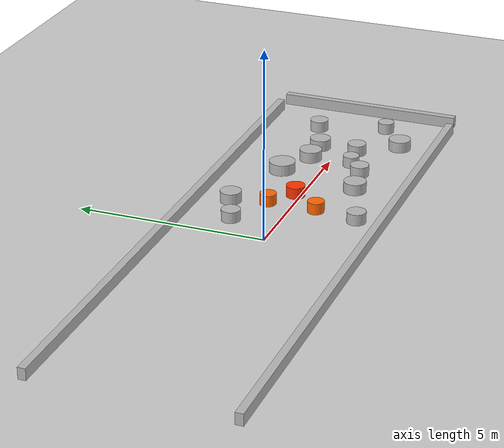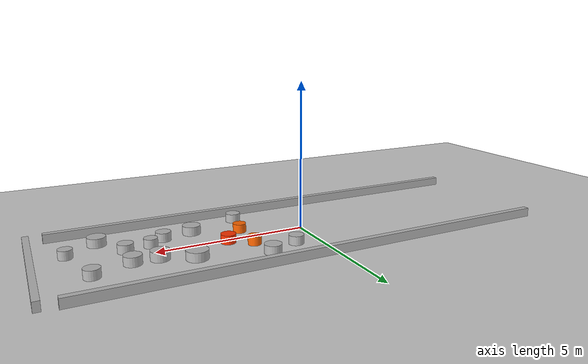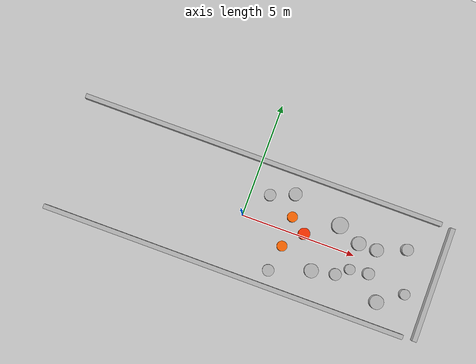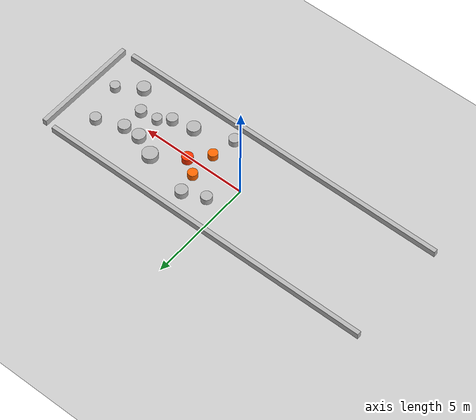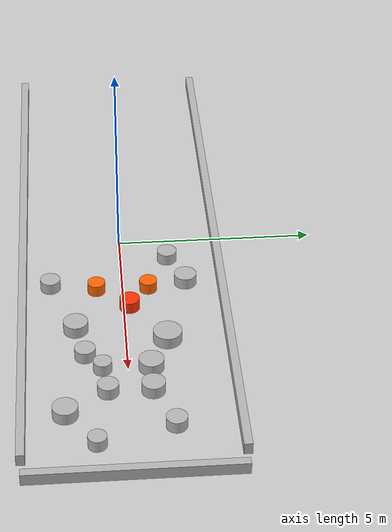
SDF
<?xml version="1.0"?>
<sdf version="1.6">
  <world name="default">
    <include><uri>model://ground_plane</uri></include>
    <include><uri>model://sun</uri></include>
    <scene><shadows>false</shadows></scene>
    <physics type="ode">
      <real_time_update_rate>100.0</real_time_update_rate>
      <max_step_size>0.01</max_step_size>
      <real_time_factor>1</real_time_factor>
      <ode><solver><type>quick</type><iters>150</iters><precon_iters>0</precon_iters><sor>1.4</sor><use_dynamic_moi_rescaling>1</use_dynamic_moi_rescaling></solver>
      <constraints><cfm>0.00001</cfm><erp>0.2</erp><contact_max_correcting_vel>2000.0</contact_max_correcting_vel><contact_surface_layer>0.01</contact_surface_layer></constraints></ode>
    </physics>

    <!-- Walls -->
    <model name="wall_l"><static>1</static><pose>0 2.5 0.15 0 0 0</pose><link name="l"><collision name="c"><geometry><box><size>16 0.2 0.3</size></box></geometry></collision><visual name="v"><geometry><box><size>16 0.2 0.3</size></box></geometry></visual></link></model>
    <model name="wall_r"><static>1</static><pose>0 -2.5 0.15 0 0 0</pose><link name="l"><collision name="c"><geometry><box><size>16 0.2 0.3</size></box></geometry></collision><visual name="v"><geometry><box><size>16 0.2 0.3</size></box></geometry></visual></link></model>
    <model name="end_wall"><static>1</static><pose>8.5 0 0.15 0 0 0</pose><link name="l"><collision name="c"><geometry><box><size>0.2 5 0.3</size></box></geometry></collision><visual name="v"><geometry><box><size>0.2 5 0.3</size></box></geometry></visual></link></model>

    <!-- Gate pillars -->
    <model name="gate_L"><static>1</static><pose>2.0 0.65 0.15 0 0 0</pose><link name="l"><collision name="c"><geometry><cylinder><radius>0.22</radius><length>0.3</length></cylinder></geometry></collision><visual name="v"><geometry><cylinder><radius>0.22</radius><length>0.3</length></cylinder></geometry><material><ambient>1 0.4 0.0 1</ambient></material></visual></link></model>
    <model name="gate_R"><static>1</static><pose>2.0 -0.65 0.15 0 0 0</pose><link name="l"><collision name="c"><geometry><cylinder><radius>0.22</radius><length>0.3</length></cylinder></geometry></collision><visual name="v"><geometry><cylinder><radius>0.22</radius><length>0.3</length></cylinder></geometry><material><ambient>1 0.4 0.0 1</ambient></material></visual></link></model>

    <!-- Post-gate trap -->
    <model name="trap"><static>1</static><pose>2.7 0.15 0.15 0 0 0</pose><link name="l"><collision name="c"><geometry><cylinder><radius>0.25</radius><length>0.3</length></cylinder></geometry></collision><visual name="v"><geometry><cylinder><radius>0.25</radius><length>0.3</length></cylinder></geometry><material><ambient>1 0.2 0.0 1</ambient></material></visual></link></model>

    <!-- Side squeeze obstacles -->
    <model name="sq_L1"><static>1</static><pose>5.0 0.55 0.15 0 0 0</pose><link name="l"><collision name="c"><geometry><cylinder><radius>0.30</radius><length>0.3</length></cylinder></geometry></collision><visual name="v"><geometry><cylinder><radius>0.30</radius><length>0.3</length></cylinder></geometry></visual></link></model>
    <model name="sq_L2"><static>1</static><pose>5.8 0.55 0.15 0 0 0</pose><link name="l"><collision name="c"><geometry><cylinder><radius>0.28</radius><length>0.3</length></cylinder></geometry></collision><visual name="v"><geometry><cylinder><radius>0.28</radius><length>0.3</length></cylinder></geometry></visual></link></model>

    <!-- Background obstacles -->
        <model name="bg_0"><static>1</static><pose>0.8 1.2 0.15 0 0 0</pose><link name="l"><collision name="c"><geometry><cylinder><radius>0.25</radius><length>0.3</length></cylinder></geometry></collision><visual name="v"><geometry><cylinder><radius>0.25</radius><length>0.3</length></cylinder></geometry></visual></link></model>
    <model name="bg_1"><static>1</static><pose>1.8 -1.8 0.15 0 0 0</pose><link name="l"><collision name="c"><geometry><cylinder><radius>0.25</radius><length>0.3</length></cylinder></geometry></collision><visual name="v"><geometry><cylinder><radius>0.25</radius><length>0.3</length></cylinder></geometry></visual></link></model>
    <model name="bg_2"><static>1</static><pose>1.8 1.6 0.15 0 0 0</pose><link name="l"><collision name="c"><geometry><cylinder><radius>0.28</radius><length>0.3</length></cylinder></geometry></collision><visual name="v"><geometry><cylinder><radius>0.28</radius><length>0.3</length></cylinder></geometry></visual></link></model>
    <model name="bg_3"><static>1</static><pose>3.5 -1.2 0.15 0 0 0</pose><link name="l"><collision name="c"><geometry><cylinder><radius>0.3</radius><length>0.3</length></cylinder></geometry></collision><visual name="v"><geometry><cylinder><radius>0.3</radius><length>0.3</length></cylinder></geometry></visual></link></model>
    <model name="bg_4"><static>1</static><pose>4.0 1.0 0.15 0 0 0</pose><link name="l"><collision name="c"><geometry><cylinder><radius>0.35</radius><length>0.3</length></cylinder></geometry></collision><visual name="v"><geometry><cylinder><radius>0.35</radius><length>0.3</length></cylinder></geometry></visual></link></model>
    <model name="bg_5"><static>1</static><pose>4.5 -1.0 0.15 0 0 0</pose><link name="l"><collision name="c"><geometry><cylinder><radius>0.25</radius><length>0.3</length></cylinder></geometry></collision><visual name="v"><geometry><cylinder><radius>0.25</radius><length>0.3</length></cylinder></geometry></visual></link></model>
    <model name="bg_6"><static>1</static><pose>5.0 -0.6 0.15 0 0 0</pose><link name="l"><collision name="c"><geometry><cylinder><radius>0.22</radius><length>0.3</length></cylinder></geometry></collision><visual name="v"><geometry><cylinder><radius>0.22</radius><length>0.3</length></cylinder></geometry></visual></link></model>
    <model name="bg_7"><static>1</static><pose>5.8 -0.5 0.15 0 0 0</pose><link name="l"><collision name="c"><geometry><cylinder><radius>0.25</radius><length>0.3</length></cylinder></geometry></collision><visual name="v"><geometry><cylinder><radius>0.25</radius><length>0.3</length></cylinder></geometry></visual></link></model>
    <model name="bg_8"><static>1</static><pose>6.5 -1.5 0.15 0 0 0</pose><link name="l"><collision name="c"><geometry><cylinder><radius>0.3</radius><length>0.3</length></cylinder></geometry></collision><visual name="v"><geometry><cylinder><radius>0.3</radius><length>0.3</length></cylinder></geometry></visual></link></model>
    <model name="bg_9"><static>1</static><pose>7.0 1.0 0.15 0 0 0</pose><link name="l"><collision name="c"><geometry><cylinder><radius>0.25</radius><length>0.3</length></cylinder></geometry></collision><visual name="v"><geometry><cylinder><radius>0.25</radius><length>0.3</length></cylinder></geometry></visual></link></model>
    <model name="bg_10"><static>1</static><pose>7.5 -0.8 0.15 0 0 0</pose><link name="l"><collision name="c"><geometry><cylinder><radius>0.22</radius><length>0.3</length></cylinder></geometry></collision><visual name="v"><geometry><cylinder><radius>0.22</radius><length>0.3</length></cylinder></geometry></visual></link></model>
    <model name="sq_0"><static>1</static><pose>5.0 0.55 0.15 0 0 0</pose><link name="l"><collision name="c"><geometry><cylinder><radius>0.3</radius><length>0.3</length></cylinder></geometry></collision><visual name="v"><geometry><cylinder><radius>0.3</radius><length>0.3</length></cylinder></geometry></visual></link></model>
    <model name="sq_1"><static>1</static><pose>5.8 0.55 0.15 0 0 0</pose><link name="l"><collision name="c"><geometry><cylinder><radius>0.28</radius><length>0.3</length></cylinder></geometry></collision><visual name="v"><geometry><cylinder><radius>0.28</radius><length>0.3</length></cylinder></geometry></visual></link></model>

  </world>
</sdf>
